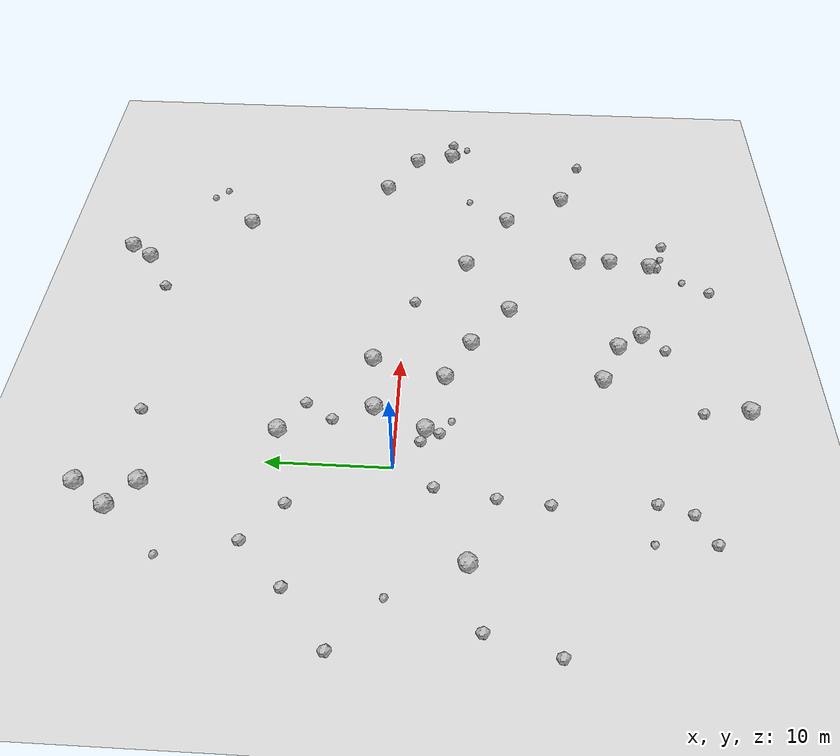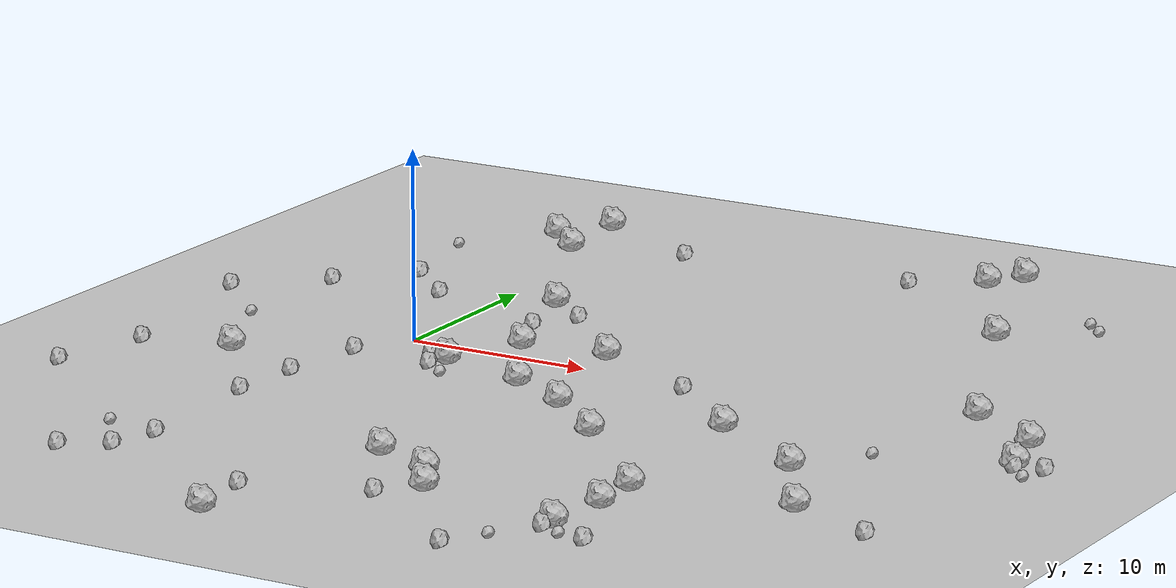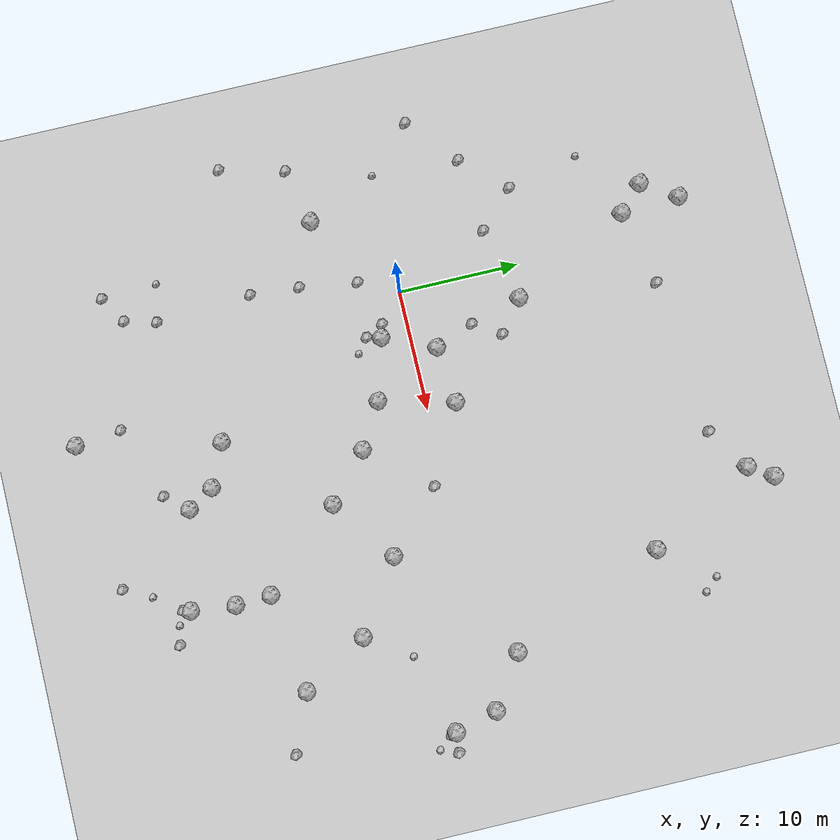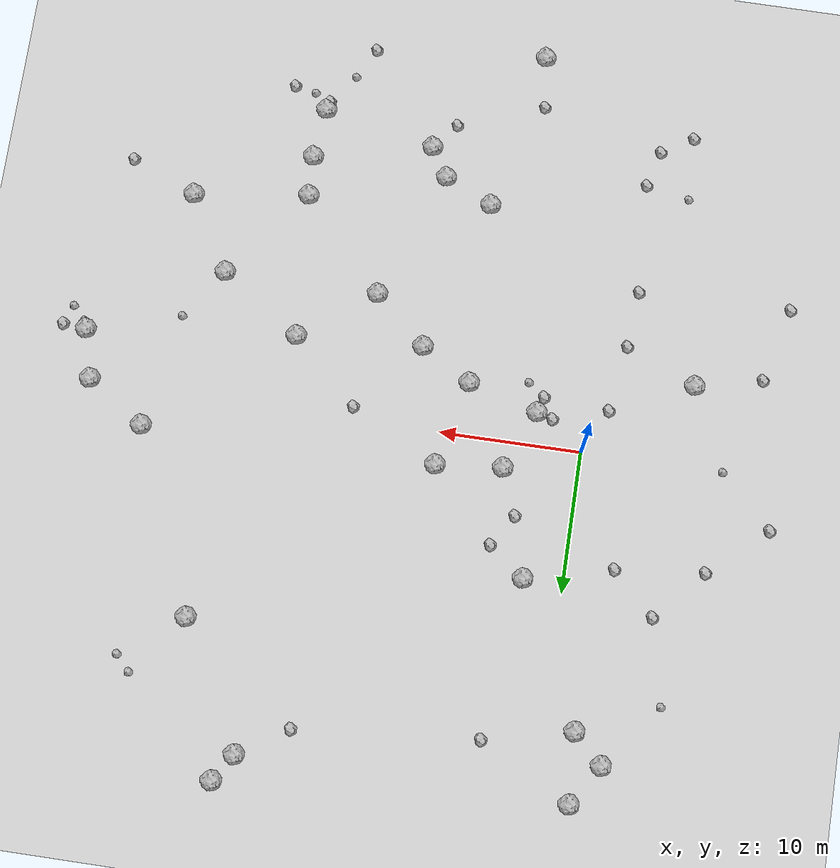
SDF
<sdf version="1.6">
 <world name="default">
  <include><uri>model://custom_ground</uri></include>
  <include><uri>model://sun</uri></include>
  <model name="rock1_0_0">
   <include><uri>model://rock1</uri><pose>12.210120737058986 -18.466581193428667 0.5 0 0 0</pose></include>
  </model>
  <model name="rock1_0_1">
   <include><uri>model://rock1</uri><pose>13.51467011979259 -20.58209805144698 0.5 0 0 0</pose></include>
  </model>
  <model name="rock1_0_2">
   <include><uri>model://rock1</uri><pose>20.976834868786746 -5.357824327173432 0.5 0 0 0</pose></include>
  </model>
  <model name="rock1_0_3">
   <include><uri>model://rock1</uri><pose>6.374396256742518 -28.488185264887626 0.5 0 0 0</pose></include>
  </model>
  <model name="rock1_0_4">
   <include><uri>model://rock1</uri><pose>26.71174690072492 -9.212716186987468 0.5 0 0 0</pose></include>
  </model>
  <model name="rock1_0_5">
   <include><uri>model://rock1</uri><pose>25.31315330277549 15.417043825029069 0.5 0 0 0</pose></include>
  </model>
  <model name="rock1_0_6">
   <include><uri>model://rock1</uri><pose>3.4534827946943913 -2.348081906730247 0.5 0 0 0</pose></include>
  </model>
  <model name="rock1_0_7">
   <include><uri>model://rock1</uri><pose>-4.152870899165064 21.261191247073384 0.5 0 0 0</pose></include>
  </model>
  <model name="rock1_0_8">
   <include><uri>model://rock1</uri><pose>12.033709989780327 -5.883364822600413 0.5 0 0 0</pose></include>
  </model>
  <model name="rock1_0_9">
   <include><uri>model://rock1</uri><pose>21.736938282522267 -15.692244137602579 0.5 0 0 0</pose></include>
  </model>
  <model name="rock1_0_10">
   <include><uri>model://rock1</uri><pose>35.73615900772557 -3.6536337119357647 0.5 0 0 0</pose></include>
  </model>
  <model name="rock1_0_11">
   <include><uri>model://rock1</uri><pose>9.969265012213558 2.3762110666950065 0.5 0 0 0</pose></include>
  </model>
  <model name="rock1_0_12">
   <include><uri>model://rock1</uri><pose>2.829972278116447 9.390264971898475 0.5 0 0 0</pose></include>
  </model>
  <model name="rock1_0_13">
   <include><uri>model://rock1</uri><pose>8.781611557250809 -16.8828711470224 0.5 0 0 0</pose></include>
  </model>
  <model name="rock1_0_14">
   <include><uri>model://rock1</uri><pose>21.733134406772365 26.09967044643595 0.5 0 0 0</pose></include>
  </model>
  <model name="rock1_0_15">
   <include><uri>model://rock1</uri><pose>20.495723301469347 24.153313202001705 0.5 0 0 0</pose></include>
  </model>
  <model name="rock1_0_16">
   <include><uri>model://rock1</uri><pose>8.44380563563599 -3.7712029076456446 0.5 0 0 0</pose></include>
  </model>
  <model name="rock1_0_17">
   <include><uri>model://rock1</uri><pose>21.871737415834843 -18.6138458616119 0.5 0 0 0</pose></include>
  </model>
  <model name="rock1_0_18">
   <include><uri>model://rock1</uri><pose>30.69914922684844 2.6015854987027893 0.5 0 0 0</pose></include>
  </model>
  <model name="rock1_0_19">
   <include><uri>model://rock1</uri><pose>5.260310927257375 1.9041762050873459 0.5 0 0 0</pose></include>
  </model>
  <model name="rock1_0_20">
   <include><uri>model://rock1</uri><pose>15.780996891880804 -9.215764275393976 0.5 0 0 0</pose></include>
  </model>
  <model name="rock1_0_21">
   <include><uri>model://rock1</uri><pose>-2.0875832033323363 19.243625732345187 0.5 0 0 0</pose></include>
  </model>
  <model name="rock1_0_22">
   <include><uri>model://rock1</uri><pose>-7.2331224198638004 -5.846169200037082 0.5 0 0 0</pose></include>
  </model>
  <model name="rock1_0_23">
   <include><uri>model://rock1</uri><pose>34.82272575136849 -0.15920923674874388 0.5 0 0 0</pose></include>
  </model>
  <model name="rock1_0_24">
   <include><uri>model://rock1</uri><pose>-2.347636350288429 24.12990647884348 0.5 0 0 0</pose></include>
  </model>
  <model name="rock1_0_25">
   <include><uri>model://rock1</uri><pose>21.49164439037949 -22.246047264491928 0.5 0 0 0</pose></include>
  </model>
  <model name="rock1_0_26">
   <include><uri>model://rock1</uri><pose>29.870955154010964 -14.569132193336557 0.5 0 0 0</pose></include>
  </model>
  <model name="rock2_0_0">
   <include><uri>model://rock2</uri><pose>3.0748103188576827 -3.4910692760550077 0.3 0 0 0</pose></include>
  </model>
  <model name="rock2_0_1">
   <include><uri>model://rock2</uri><pose>-13.31053028444079 -12.286566447257051 0.3 0 0 0</pose></include>
  </model>
  <model name="rock2_0_2">
   <include><uri>model://rock2</uri><pose>21.310489338360256 -22.900704936510447 0.3 0 0 0</pose></include>
  </model>
  <model name="rock2_0_3">
   <include><uri>model://rock2</uri><pose>3.946003117438387 5.163685692182874 0.3 0 0 0</pose></include>
  </model>
  <model name="rock2_0_4">
   <include><uri>model://rock2</uri><pose>11.969644833564686 -22.473911159041712 0.3 0 0 0</pose></include>
  </model>
  <model name="rock2_0_5">
   <include><uri>model://rock2</uri><pose>-2.0840303804315 -19.964814406578533 0.3 0 0 0</pose></include>
  </model>
  <model name="rock2_0_6">
   <include><uri>model://rock2</uri><pose>16.214471823967763 -0.8613004986742432 0.3 0 0 0</pose></include>
  </model>
  <model name="rock2_0_7">
   <include><uri>model://rock2</uri><pose>-13.64996568472206 3.631426725542397 0.3 0 0 0</pose></include>
  </model>
  <model name="rock2_0_8">
   <include><uri>model://rock2</uri><pose>-2.2367686055192664 -7.959117385570593 0.3 0 0 0</pose></include>
  </model>
  <model name="rock2_0_9">
   <include><uri>model://rock2</uri><pose>2.2869885962018976 -2.011433069858459 0.3 0 0 0</pose></include>
  </model>
  <model name="rock2_0_10">
   <include><uri>model://rock2</uri><pose>-5.009351243501703 -23.946853909577015 0.3 0 0 0</pose></include>
  </model>
  <model name="rock2_0_11">
   <include><uri>model://rock2</uri><pose>4.102222425538965 20.741619317152157 0.3 0 0 0</pose></include>
  </model>
  <model name="rock2_0_12">
   <include><uri>model://rock2</uri><pose>35.89687202311844 -4.06974831692326 0.3 0 0 0</pose></include>
  </model>
  <model name="rock2_0_13">
   <include><uri>model://rock2</uri><pose>-11.963945608320126 -6.935618145005819 0.3 0 0 0</pose></include>
  </model>
  <model name="rock2_0_14">
   <include><uri>model://rock2</uri><pose>-3.371849882381305 7.872143561426988 0.3 0 0 0</pose></include>
  </model>
  <model name="rock2_0_15">
   <include><uri>model://rock2</uri><pose>-1.5450604663320426 -3.1876797256808302 0.3 0 0 0</pose></include>
  </model>
  <model name="rock2_0_16">
   <include><uri>model://rock2</uri><pose>18.573300054784823 -27.302278877163392 0.3 0 0 0</pose></include>
  </model>
  <model name="rock2_0_17">
   <include><uri>model://rock2</uri><pose>37.394022365852564 -3.8091651058394724 0.3 0 0 0</pose></include>
  </model>
  <model name="rock2_0_18">
   <include><uri>model://rock2</uri><pose>23.981278866925116 -23.730722368636457 0.3 0 0 0</pose></include>
  </model>
  <model name="rock2_0_19">
   <include><uri>model://rock2</uri><pose>-2.776112056968156 -22.586041586109786 0.3 0 0 0</pose></include>
  </model>
  <model name="rock2_0_20">
   <include><uri>model://rock2</uri><pose>-9.599437452681093 7.202485664169373 0.3 0 0 0</pose></include>
  </model>
  <model name="rock2_0_21">
   <include><uri>model://rock2</uri><pose>34.5523769180396 -16.537295114235373 0.3 0 0 0</pose></include>
  </model>
  <model name="rock2_0_22">
   <include><uri>model://rock2</uri><pose>5.9225814935332295 -24.748376374415813 0.3 0 0 0</pose></include>
  </model>
  <model name="rock2_0_23">
   <include><uri>model://rock2</uri><pose>-2.5463423877784663 -12.021655704729067 0.3 0 0 0</pose></include>
  </model>
  <model name="rock2_0_24">
   <include><uri>model://rock2</uri><pose>5.34789658126132 7.423199240184289 0.3 0 0 0</pose></include>
  </model>
  <model name="rock2_0_25">
   <include><uri>model://rock2</uri><pose>16.970154424445163 21.928244841126954 0.3 0 0 0</pose></include>
  </model>
  <model name="rock2_0_26">
   <include><uri>model://rock2</uri><pose>-6.3710953025264985 10.78087395501386 0.3 0 0 0</pose></include>
  </model>
  <model name="rock3_0_0">
   <include><uri>model://rock3</uri><pose>-7.728922917484455 16.72517719239456 0.2 0 0 0</pose></include>
  </model>
  <model name="rock3_0_1">
   <include><uri>model://rock3</uri><pose>-5.20451770374126 -19.42957161972308 0.2 0 0 0</pose></include>
  </model>
  <model name="rock3_0_2">
   <include><uri>model://rock3</uri><pose>4.243135764594221 -4.454921491262226 0.2 0 0 0</pose></include>
  </model>
  <model name="rock3_0_3">
   <include><uri>model://rock3</uri><pose>28.535825018505314 19.67985457256013 0.2 0 0 0</pose></include>
  </model>
  <model name="rock3_0_4">
   <include><uri>model://rock3</uri><pose>22.438560910853674 -23.485219030793747 0.2 0 0 0</pose></include>
  </model>
  <model name="rock3_0_5">
   <include><uri>model://rock3</uri><pose>19.722556362741976 -25.110465455320846 0.2 0 0 0</pose></include>
  </model>
  <model name="rock3_0_6">
   <include><uri>model://rock3</uri><pose>-9.97056866818205 -0.06989695830433007 0.2 0 0 0</pose></include>
  </model>
  <model name="rock3_0_7">
   <include><uri>model://rock3</uri><pose>29.540103991441974 18.57841380575214 0.2 0 0 0</pose></include>
  </model>
  <model name="rock3_0_8">
   <include><uri>model://rock3</uri><pose>29.157827933029054 -5.648855516224021 0.2 0 0 0</pose></include>
  </model>
  <model name="rock3_0_9">
   <include><uri>model://rock3</uri><pose>36.87030567170508 -5.265252002547484 0.2 0 0 0</pose></include>
  </model>
 </world>
</sdf>
